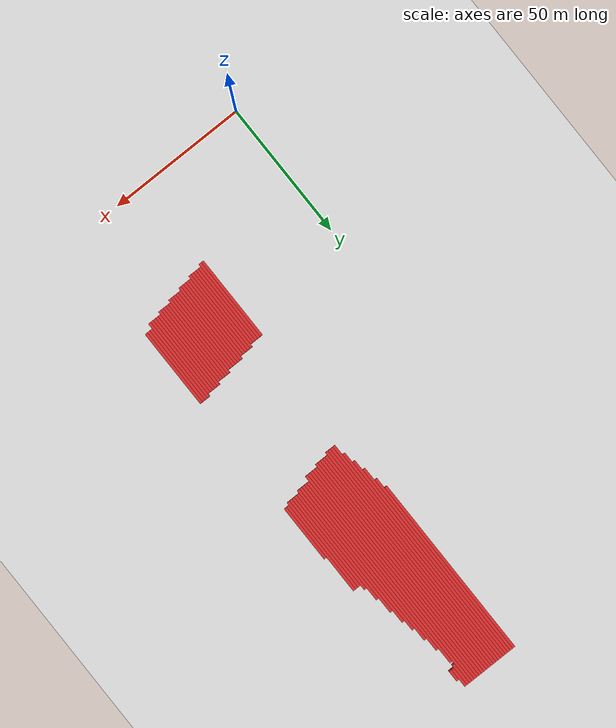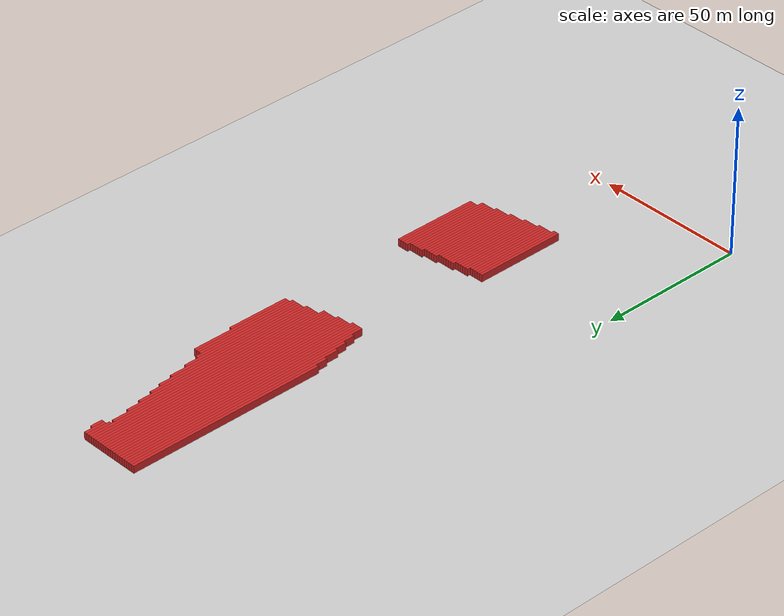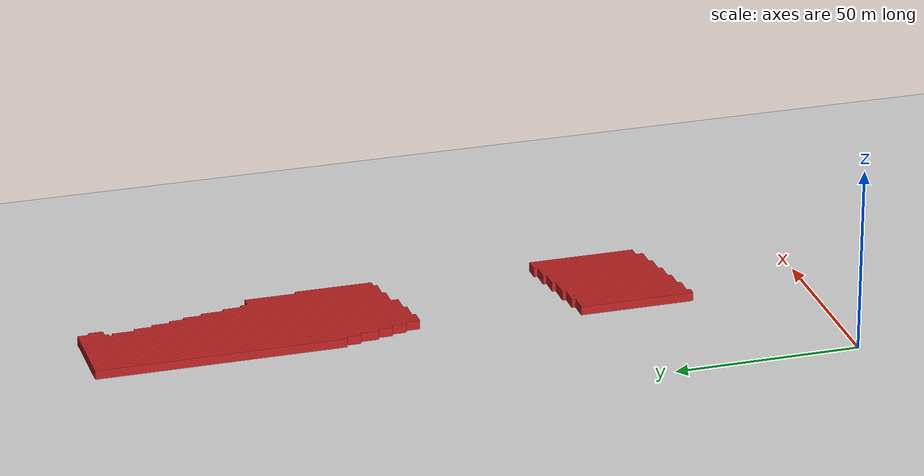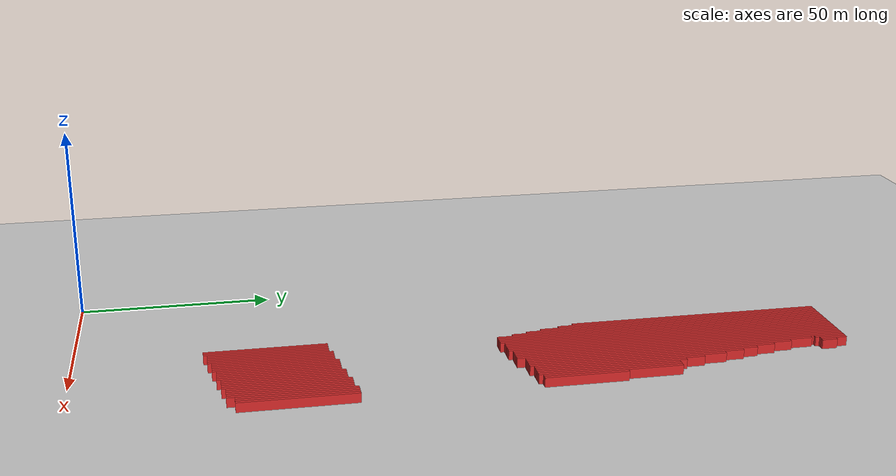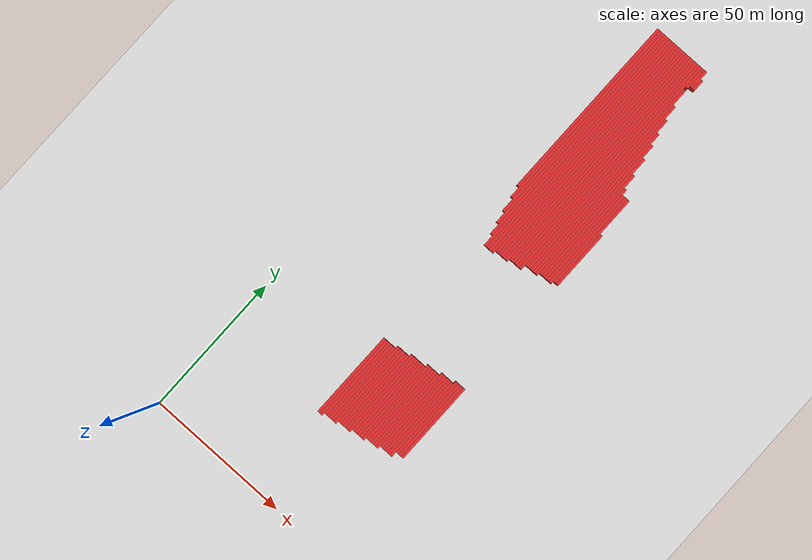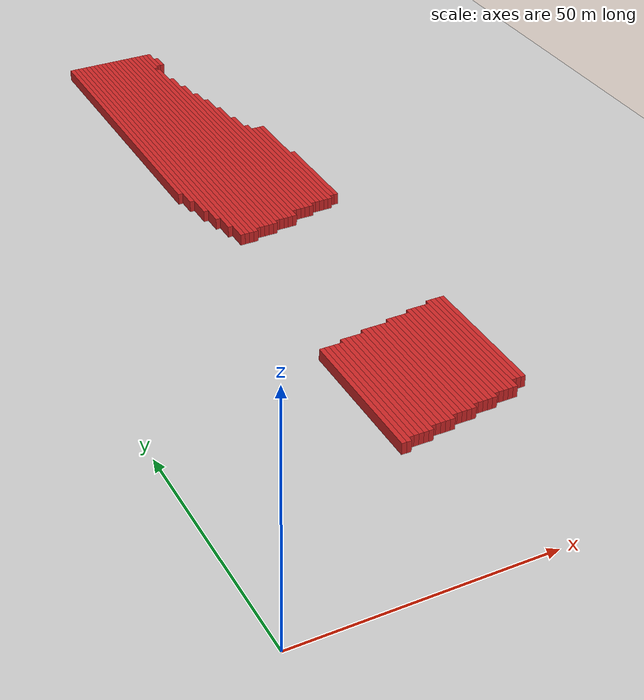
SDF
<sdf version="1.4">
 <world name="1_wall">
  <model name="ground_plane">
   <static>1</static>
   <link name="link">
    <collision name="collision">
     <geometry><plane><normal>0 0 1</normal><size>1000 1000</size></plane></geometry>
     <surface><friction><ode><mu>100</mu><mu2>50</mu2></ode></friction></surface>
    </collision>
    <visual name="visual">
     <cast_shadows>0</cast_shadows>
     <geometry><plane><normal>0 0 1</normal><size>10000 10000</size></plane></geometry>
     <material>
      <script><uri>file://media/materials/scripts/gazebo.material</uri><name>Gazebo/Grey</name></script>
     </material>
    </visual>
    <velocity_decay><linear>0</linear><angular>0</angular></velocity_decay>
   </link>
  </model>
  <model name="Wall_64">
   <static>1</static>
   <link name="Wall_64">
    <collision name="Wall_Collision_64">
     <geometry><box><size>67.0 1.0 2.5</size></box></geometry>
     <pose>0 0 1.25 0 -0 0</pose>
    </collision>
    <visual name="Wall_Visual_64">
     <pose>0 0 1.25 0 -0 0</pose>
     <geometry><box><size>67.0 1.0 2.5</size></box></geometry>
     <material>
      <script><uri>file://media/materials/scripts/gazebo.material</uri><name>Gazebo/Red</name></script>
     </material>
    </visual>
    <velocity_decay><linear>0</linear><angular>0</angular></velocity_decay>
    <pose>38.5 160.5 0 0 0 1.5707963267948966</pose>
   </link>
  </model>
  <model name="Wall_65">
   <static>1</static>
   <link name="Wall_65">
    <collision name="Wall_Collision_65">
     <geometry><box><size>31.0 1.0 2.5</size></box></geometry>
     <pose>0 0 1.25 0 -0 0</pose>
    </collision>
    <visual name="Wall_Visual_65">
     <pose>0 0 1.25 0 -0 0</pose>
     <geometry><box><size>31.0 1.0 2.5</size></box></geometry>
     <material>
      <script><uri>file://media/materials/scripts/gazebo.material</uri><name>Gazebo/Red</name></script>
     </material>
    </visual>
    <velocity_decay><linear>0</linear><angular>0</angular></velocity_decay>
    <pose>39.5 47.5 0 0 0 1.5707963267948966</pose>
   </link>
  </model>
  <model name="Wall_66">
   <static>1</static>
   <link name="Wall_66">
    <collision name="Wall_Collision_66">
     <geometry><box><size>71.0 1.0 2.5</size></box></geometry>
     <pose>0 0 1.25 0 -0 0</pose>
    </collision>
    <visual name="Wall_Visual_66">
     <pose>0 0 1.25 0 -0 0</pose>
     <geometry><box><size>71.0 1.0 2.5</size></box></geometry>
     <material>
      <script><uri>file://media/materials/scripts/gazebo.material</uri><name>Gazebo/Red</name></script>
     </material>
    </visual>
    <velocity_decay><linear>0</linear><angular>0</angular></velocity_decay>
    <pose>39.5 158.5 0 0 0 1.5707963267948966</pose>
   </link>
  </model>
  <model name="Wall_67">
   <static>1</static>
   <link name="Wall_67">
    <collision name="Wall_Collision_67">
     <geometry><box><size>31.0 1.0 2.5</size></box></geometry>
     <pose>0 0 1.25 0 -0 0</pose>
    </collision>
    <visual name="Wall_Visual_67">
     <pose>0 0 1.25 0 -0 0</pose>
     <geometry><box><size>31.0 1.0 2.5</size></box></geometry>
     <material>
      <script><uri>file://media/materials/scripts/gazebo.material</uri><name>Gazebo/Red</name></script>
     </material>
    </visual>
    <velocity_decay><linear>0</linear><angular>0</angular></velocity_decay>
    <pose>40.5 47.5 0 0 0 1.5707963267948966</pose>
   </link>
  </model>
  <model name="Wall_68">
   <static>1</static>
   <link name="Wall_68">
    <collision name="Wall_Collision_68">
     <geometry><box><size>76.0 1.0 2.5</size></box></geometry>
     <pose>0 0 1.25 0 -0 0</pose>
    </collision>
    <visual name="Wall_Visual_68">
     <pose>0 0 1.25 0 -0 0</pose>
     <geometry><box><size>76.0 1.0 2.5</size></box></geometry>
     <material>
      <script><uri>file://media/materials/scripts/gazebo.material</uri><name>Gazebo/Red</name></script>
     </material>
    </visual>
    <velocity_decay><linear>0</linear><angular>0</angular></velocity_decay>
    <pose>40.5 156.0 0 0 0 1.5707963267948966</pose>
   </link>
  </model>
  <model name="Wall_69">
   <static>1</static>
   <link name="Wall_69">
    <collision name="Wall_Collision_69">
     <geometry><box><size>30.0 1.0 2.5</size></box></geometry>
     <pose>0 0 1.25 0 -0 0</pose>
    </collision>
    <visual name="Wall_Visual_69">
     <pose>0 0 1.25 0 -0 0</pose>
     <geometry><box><size>30.0 1.0 2.5</size></box></geometry>
     <material>
      <script><uri>file://media/materials/scripts/gazebo.material</uri><name>Gazebo/Red</name></script>
     </material>
    </visual>
    <velocity_decay><linear>0</linear><angular>0</angular></velocity_decay>
    <pose>41.5 48.0 0 0 0 1.5707963267948966</pose>
   </link>
  </model>
  <model name="Wall_70">
   <static>1</static>
   <link name="Wall_70">
    <collision name="Wall_Collision_70">
     <geometry><box><size>80.0 1.0 2.5</size></box></geometry>
     <pose>0 0 1.25 0 -0 0</pose>
    </collision>
    <visual name="Wall_Visual_70">
     <pose>0 0 1.25 0 -0 0</pose>
     <geometry><box><size>80.0 1.0 2.5</size></box></geometry>
     <material>
      <script><uri>file://media/materials/scripts/gazebo.material</uri><name>Gazebo/Red</name></script>
     </material>
    </visual>
    <velocity_decay><linear>0</linear><angular>0</angular></velocity_decay>
    <pose>41.5 154.0 0 0 0 1.5707963267948966</pose>
   </link>
  </model>
  <model name="Wall_71">
   <static>1</static>
   <link name="Wall_71">
    <collision name="Wall_Collision_71">
     <geometry><box><size>30.0 1.0 2.5</size></box></geometry>
     <pose>0 0 1.25 0 -0 0</pose>
    </collision>
    <visual name="Wall_Visual_71">
     <pose>0 0 1.25 0 -0 0</pose>
     <geometry><box><size>30.0 1.0 2.5</size></box></geometry>
     <material>
      <script><uri>file://media/materials/scripts/gazebo.material</uri><name>Gazebo/Red</name></script>
     </material>
    </visual>
    <velocity_decay><linear>0</linear><angular>0</angular></velocity_decay>
    <pose>42.5 48.0 0 0 0 1.5707963267948966</pose>
   </link>
  </model>
  <model name="Wall_72">
   <static>1</static>
   <link name="Wall_72">
    <collision name="Wall_Collision_72">
     <geometry><box><size>84.0 1.0 2.5</size></box></geometry>
     <pose>0 0 1.25 0 -0 0</pose>
    </collision>
    <visual name="Wall_Visual_72">
     <pose>0 0 1.25 0 -0 0</pose>
     <geometry><box><size>84.0 1.0 2.5</size></box></geometry>
     <material>
      <script><uri>file://media/materials/scripts/gazebo.material</uri><name>Gazebo/Red</name></script>
     </material>
    </visual>
    <velocity_decay><linear>0</linear><angular>0</angular></velocity_decay>
    <pose>42.5 152.0 0 0 0 1.5707963267948966</pose>
   </link>
  </model>
  <model name="Wall_73">
   <static>1</static>
   <link name="Wall_73">
    <collision name="Wall_Collision_73">
     <geometry><box><size>30.0 1.0 2.5</size></box></geometry>
     <pose>0 0 1.25 0 -0 0</pose>
    </collision>
    <visual name="Wall_Visual_73">
     <pose>0 0 1.25 0 -0 0</pose>
     <geometry><box><size>30.0 1.0 2.5</size></box></geometry>
     <material>
      <script><uri>file://media/materials/scripts/gazebo.material</uri><name>Gazebo/Red</name></script>
     </material>
    </visual>
    <velocity_decay><linear>0</linear><angular>0</angular></velocity_decay>
    <pose>43.5 48.0 0 0 0 1.5707963267948966</pose>
   </link>
  </model>
  <model name="Wall_74">
   <static>1</static>
   <link name="Wall_74">
    <collision name="Wall_Collision_74">
     <geometry><box><size>88.0 1.0 2.5</size></box></geometry>
     <pose>0 0 1.25 0 -0 0</pose>
    </collision>
    <visual name="Wall_Visual_74">
     <pose>0 0 1.25 0 -0 0</pose>
     <geometry><box><size>88.0 1.0 2.5</size></box></geometry>
     <material>
      <script><uri>file://media/materials/scripts/gazebo.material</uri><name>Gazebo/Red</name></script>
     </material>
    </visual>
    <velocity_decay><linear>0</linear><angular>0</angular></velocity_decay>
    <pose>43.5 150.0 0 0 0 1.5707963267948966</pose>
   </link>
  </model>
  <model name="Wall_75">
   <static>1</static>
   <link name="Wall_75">
    <collision name="Wall_Collision_75">
     <geometry><box><size>31.0 1.0 2.5</size></box></geometry>
     <pose>0 0 1.25 0 -0 0</pose>
    </collision>
    <visual name="Wall_Visual_75">
     <pose>0 0 1.25 0 -0 0</pose>
     <geometry><box><size>31.0 1.0 2.5</size></box></geometry>
     <material>
      <script><uri>file://media/materials/scripts/gazebo.material</uri><name>Gazebo/Red</name></script>
     </material>
    </visual>
    <velocity_decay><linear>0</linear><angular>0</angular></velocity_decay>
    <pose>44.5 48.5 0 0 0 1.5707963267948966</pose>
   </link>
  </model>
  <model name="Wall_76">
   <static>1</static>
   <link name="Wall_76">
    <collision name="Wall_Collision_76">
     <geometry><box><size>88.0 1.0 2.5</size></box></geometry>
     <pose>0 0 1.25 0 -0 0</pose>
    </collision>
    <visual name="Wall_Visual_76">
     <pose>0 0 1.25 0 -0 0</pose>
     <geometry><box><size>88.0 1.0 2.5</size></box></geometry>
     <material>
      <script><uri>file://media/materials/scripts/gazebo.material</uri><name>Gazebo/Red</name></script>
     </material>
    </visual>
    <velocity_decay><linear>0</linear><angular>0</angular></velocity_decay>
    <pose>44.5 150.0 0 0 0 1.5707963267948966</pose>
   </link>
  </model>
  <model name="Wall_77">
   <static>1</static>
   <link name="Wall_77">
    <collision name="Wall_Collision_77">
     <geometry><box><size>31.0 1.0 2.5</size></box></geometry>
     <pose>0 0 1.25 0 -0 0</pose>
    </collision>
    <visual name="Wall_Visual_77">
     <pose>0 0 1.25 0 -0 0</pose>
     <geometry><box><size>31.0 1.0 2.5</size></box></geometry>
     <material>
      <script><uri>file://media/materials/scripts/gazebo.material</uri><name>Gazebo/Red</name></script>
     </material>
    </visual>
    <velocity_decay><linear>0</linear><angular>0</angular></velocity_decay>
    <pose>45.5 48.5 0 0 0 1.5707963267948966</pose>
   </link>
  </model>
  <model name="Wall_78">
   <static>1</static>
   <link name="Wall_78">
    <collision name="Wall_Collision_78">
     <geometry><box><size>88.0 1.0 2.5</size></box></geometry>
     <pose>0 0 1.25 0 -0 0</pose>
    </collision>
    <visual name="Wall_Visual_78">
     <pose>0 0 1.25 0 -0 0</pose>
     <geometry><box><size>88.0 1.0 2.5</size></box></geometry>
     <material>
      <script><uri>file://media/materials/scripts/gazebo.material</uri><name>Gazebo/Red</name></script>
     </material>
    </visual>
    <velocity_decay><linear>0</linear><angular>0</angular></velocity_decay>
    <pose>45.5 150.0 0 0 0 1.5707963267948966</pose>
   </link>
  </model>
  <model name="Wall_79">
   <static>1</static>
   <link name="Wall_79">
    <collision name="Wall_Collision_79">
     <geometry><box><size>30.0 1.0 2.5</size></box></geometry>
     <pose>0 0 1.25 0 -0 0</pose>
    </collision>
    <visual name="Wall_Visual_79">
     <pose>0 0 1.25 0 -0 0</pose>
     <geometry><box><size>30.0 1.0 2.5</size></box></geometry>
     <material>
      <script><uri>file://media/materials/scripts/gazebo.material</uri><name>Gazebo/Red</name></script>
     </material>
    </visual>
    <velocity_decay><linear>0</linear><angular>0</angular></velocity_decay>
    <pose>46.5 49.0 0 0 0 1.5707963267948966</pose>
   </link>
  </model>
  <model name="Wall_80">
   <static>1</static>
   <link name="Wall_80">
    <collision name="Wall_Collision_80">
     <geometry><box><size>88.0 1.0 2.5</size></box></geometry>
     <pose>0 0 1.25 0 -0 0</pose>
    </collision>
    <visual name="Wall_Visual_80">
     <pose>0 0 1.25 0 -0 0</pose>
     <geometry><box><size>88.0 1.0 2.5</size></box></geometry>
     <material>
      <script><uri>file://media/materials/scripts/gazebo.material</uri><name>Gazebo/Red</name></script>
     </material>
    </visual>
    <velocity_decay><linear>0</linear><angular>0</angular></velocity_decay>
    <pose>46.5 150.0 0 0 0 1.5707963267948966</pose>
   </link>
  </model>
  <model name="Wall_81">
   <static>1</static>
   <link name="Wall_81">
    <collision name="Wall_Collision_81">
     <geometry><box><size>30.0 1.0 2.5</size></box></geometry>
     <pose>0 0 1.25 0 -0 0</pose>
    </collision>
    <visual name="Wall_Visual_81">
     <pose>0 0 1.25 0 -0 0</pose>
     <geometry><box><size>30.0 1.0 2.5</size></box></geometry>
     <material>
      <script><uri>file://media/materials/scripts/gazebo.material</uri><name>Gazebo/Red</name></script>
     </material>
    </visual>
    <velocity_decay><linear>0</linear><angular>0</angular></velocity_decay>
    <pose>47.5 49.0 0 0 0 1.5707963267948966</pose>
   </link>
  </model>
  <model name="Wall_82">
   <static>1</static>
   <link name="Wall_82">
    <collision name="Wall_Collision_82">
     <geometry><box><size>87.0 1.0 2.5</size></box></geometry>
     <pose>0 0 1.25 0 -0 0</pose>
    </collision>
    <visual name="Wall_Visual_82">
     <pose>0 0 1.25 0 -0 0</pose>
     <geometry><box><size>87.0 1.0 2.5</size></box></geometry>
     <material>
      <script><uri>file://media/materials/scripts/gazebo.material</uri><name>Gazebo/Red</name></script>
     </material>
    </visual>
    <velocity_decay><linear>0</linear><angular>0</angular></velocity_decay>
    <pose>47.5 150.5 0 0 0 1.5707963267948966</pose>
   </link>
  </model>
  <model name="Wall_83">
   <static>1</static>
   <link name="Wall_83">
    <collision name="Wall_Collision_83">
     <geometry><box><size>30.0 1.0 2.5</size></box></geometry>
     <pose>0 0 1.25 0 -0 0</pose>
    </collision>
    <visual name="Wall_Visual_83">
     <pose>0 0 1.25 0 -0 0</pose>
     <geometry><box><size>30.0 1.0 2.5</size></box></geometry>
     <material>
      <script><uri>file://media/materials/scripts/gazebo.material</uri><name>Gazebo/Red</name></script>
     </material>
    </visual>
    <velocity_decay><linear>0</linear><angular>0</angular></velocity_decay>
    <pose>48.5 49.0 0 0 0 1.5707963267948966</pose>
   </link>
  </model>
  <model name="Wall_84">
   <static>1</static>
   <link name="Wall_84">
    <collision name="Wall_Collision_84">
     <geometry><box><size>87.0 1.0 2.5</size></box></geometry>
     <pose>0 0 1.25 0 -0 0</pose>
    </collision>
    <visual name="Wall_Visual_84">
     <pose>0 0 1.25 0 -0 0</pose>
     <geometry><box><size>87.0 1.0 2.5</size></box></geometry>
     <material>
      <script><uri>file://media/materials/scripts/gazebo.material</uri><name>Gazebo/Red</name></script>
     </material>
    </visual>
    <velocity_decay><linear>0</linear><angular>0</angular></velocity_decay>
    <pose>48.5 150.5 0 0 0 1.5707963267948966</pose>
   </link>
  </model>
  <model name="Wall_85">
   <static>1</static>
   <link name="Wall_85">
    <collision name="Wall_Collision_85">
     <geometry><box><size>31.0 1.0 2.5</size></box></geometry>
     <pose>0 0 1.25 0 -0 0</pose>
    </collision>
    <visual name="Wall_Visual_85">
     <pose>0 0 1.25 0 -0 0</pose>
     <geometry><box><size>31.0 1.0 2.5</size></box></geometry>
     <material>
      <script><uri>file://media/materials/scripts/gazebo.material</uri><name>Gazebo/Red</name></script>
     </material>
    </visual>
    <velocity_decay><linear>0</linear><angular>0</angular></velocity_decay>
    <pose>49.5 49.5 0 0 0 1.5707963267948966</pose>
   </link>
  </model>
  <model name="Wall_86">
   <static>1</static>
   <link name="Wall_86">
    <collision name="Wall_Collision_86">
     <geometry><box><size>87.0 1.0 2.5</size></box></geometry>
     <pose>0 0 1.25 0 -0 0</pose>
    </collision>
    <visual name="Wall_Visual_86">
     <pose>0 0 1.25 0 -0 0</pose>
     <geometry><box><size>87.0 1.0 2.5</size></box></geometry>
     <material>
      <script><uri>file://media/materials/scripts/gazebo.material</uri><name>Gazebo/Red</name></script>
     </material>
    </visual>
    <velocity_decay><linear>0</linear><angular>0</angular></velocity_decay>
    <pose>49.5 150.5 0 0 0 1.5707963267948966</pose>
   </link>
  </model>
  <model name="Wall_87">
   <static>1</static>
   <link name="Wall_87">
    <collision name="Wall_Collision_87">
     <geometry><box><size>31.0 1.0 2.5</size></box></geometry>
     <pose>0 0 1.25 0 -0 0</pose>
    </collision>
    <visual name="Wall_Visual_87">
     <pose>0 0 1.25 0 -0 0</pose>
     <geometry><box><size>31.0 1.0 2.5</size></box></geometry>
     <material>
      <script><uri>file://media/materials/scripts/gazebo.material</uri><name>Gazebo/Red</name></script>
     </material>
    </visual>
    <velocity_decay><linear>0</linear><angular>0</angular></velocity_decay>
    <pose>50.5 49.5 0 0 0 1.5707963267948966</pose>
   </link>
  </model>
  <model name="Wall_88">
   <static>1</static>
   <link name="Wall_88">
    <collision name="Wall_Collision_88">
     <geometry><box><size>87.0 1.0 2.5</size></box></geometry>
     <pose>0 0 1.25 0 -0 0</pose>
    </collision>
    <visual name="Wall_Visual_88">
     <pose>0 0 1.25 0 -0 0</pose>
     <geometry><box><size>87.0 1.0 2.5</size></box></geometry>
     <material>
      <script><uri>file://media/materials/scripts/gazebo.material</uri><name>Gazebo/Red</name></script>
     </material>
    </visual>
    <velocity_decay><linear>0</linear><angular>0</angular></velocity_decay>
    <pose>50.5 150.5 0 0 0 1.5707963267948966</pose>
   </link>
  </model>
  <model name="Wall_89">
   <static>1</static>
   <link name="Wall_89">
    <collision name="Wall_Collision_89">
     <geometry><box><size>30.0 1.0 2.5</size></box></geometry>
     <pose>0 0 1.25 0 -0 0</pose>
    </collision>
    <visual name="Wall_Visual_89">
     <pose>0 0 1.25 0 -0 0</pose>
     <geometry><box><size>30.0 1.0 2.5</size></box></geometry>
     <material>
      <script><uri>file://media/materials/scripts/gazebo.material</uri><name>Gazebo/Red</name></script>
     </material>
    </visual>
    <velocity_decay><linear>0</linear><angular>0</angular></velocity_decay>
    <pose>51.5 50.0 0 0 0 1.5707963267948966</pose>
   </link>
  </model>
  <model name="Wall_90">
   <static>1</static>
   <link name="Wall_90">
    <collision name="Wall_Collision_90">
     <geometry><box><size>87.0 1.0 2.5</size></box></geometry>
     <pose>0 0 1.25 0 -0 0</pose>
    </collision>
    <visual name="Wall_Visual_90">
     <pose>0 0 1.25 0 -0 0</pose>
     <geometry><box><size>87.0 1.0 2.5</size></box></geometry>
     <material>
      <script><uri>file://media/materials/scripts/gazebo.material</uri><name>Gazebo/Red</name></script>
     </material>
    </visual>
    <velocity_decay><linear>0</linear><angular>0</angular></velocity_decay>
    <pose>51.5 150.5 0 0 0 1.5707963267948966</pose>
   </link>
  </model>
  <model name="Wall_91">
   <static>1</static>
   <link name="Wall_91">
    <collision name="Wall_Collision_91">
     <geometry><box><size>30.0 1.0 2.5</size></box></geometry>
     <pose>0 0 1.25 0 -0 0</pose>
    </collision>
    <visual name="Wall_Visual_91">
     <pose>0 0 1.25 0 -0 0</pose>
     <geometry><box><size>30.0 1.0 2.5</size></box></geometry>
     <material>
      <script><uri>file://media/materials/scripts/gazebo.material</uri><name>Gazebo/Red</name></script>
     </material>
    </visual>
    <velocity_decay><linear>0</linear><angular>0</angular></velocity_decay>
    <pose>52.5 50.0 0 0 0 1.5707963267948966</pose>
   </link>
  </model>
  <model name="Wall_92">
   <static>1</static>
   <link name="Wall_92">
    <collision name="Wall_Collision_92">
     <geometry><box><size>86.0 1.0 2.5</size></box></geometry>
     <pose>0 0 1.25 0 -0 0</pose>
    </collision>
    <visual name="Wall_Visual_92">
     <pose>0 0 1.25 0 -0 0</pose>
     <geometry><box><size>86.0 1.0 2.5</size></box></geometry>
     <material>
      <script><uri>file://media/materials/scripts/gazebo.material</uri><name>Gazebo/Red</name></script>
     </material>
    </visual>
    <velocity_decay><linear>0</linear><angular>0</angular></velocity_decay>
    <pose>52.5 151.0 0 0 0 1.5707963267948966</pose>
   </link>
  </model>
  <model name="Wall_93">
   <static>1</static>
   <link name="Wall_93">
    <collision name="Wall_Collision_93">
     <geometry><box><size>30.0 1.0 2.5</size></box></geometry>
     <pose>0 0 1.25 0 -0 0</pose>
    </collision>
    <visual name="Wall_Visual_93">
     <pose>0 0 1.25 0 -0 0</pose>
     <geometry><box><size>30.0 1.0 2.5</size></box></geometry>
     <material>
      <script><uri>file://media/materials/scripts/gazebo.material</uri><name>Gazebo/Red</name></script>
     </material>
    </visual>
    <velocity_decay><linear>0</linear><angular>0</angular></velocity_decay>
    <pose>53.5 50.0 0 0 0 1.5707963267948966</pose>
   </link>
  </model>
  <model name="Wall_94">
   <static>1</static>
   <link name="Wall_94">
    <collision name="Wall_Collision_94">
     <geometry><box><size>86.0 1.0 2.5</size></box></geometry>
     <pose>0 0 1.25 0 -0 0</pose>
    </collision>
    <visual name="Wall_Visual_94">
     <pose>0 0 1.25 0 -0 0</pose>
     <geometry><box><size>86.0 1.0 2.5</size></box></geometry>
     <material>
      <script><uri>file://media/materials/scripts/gazebo.material</uri><name>Gazebo/Red</name></script>
     </material>
    </visual>
    <velocity_decay><linear>0</linear><angular>0</angular></velocity_decay>
    <pose>53.5 151.0 0 0 0 1.5707963267948966</pose>
   </link>
  </model>
  <model name="Wall_95">
   <static>1</static>
   <link name="Wall_95">
    <collision name="Wall_Collision_95">
     <geometry><box><size>30.0 1.0 2.5</size></box></geometry>
     <pose>0 0 1.25 0 -0 0</pose>
    </collision>
    <visual name="Wall_Visual_95">
     <pose>0 0 1.25 0 -0 0</pose>
     <geometry><box><size>30.0 1.0 2.5</size></box></geometry>
     <material>
      <script><uri>file://media/materials/scripts/gazebo.material</uri><name>Gazebo/Red</name></script>
     </material>
    </visual>
    <velocity_decay><linear>0</linear><angular>0</angular></velocity_decay>
    <pose>54.5 50.0 0 0 0 1.5707963267948966</pose>
   </link>
  </model>
  <model name="Wall_96">
   <static>1</static>
   <link name="Wall_96">
    <collision name="Wall_Collision_96">
     <geometry><box><size>86.0 1.0 2.5</size></box></geometry>
     <pose>0 0 1.25 0 -0 0</pose>
    </collision>
    <visual name="Wall_Visual_96">
     <pose>0 0 1.25 0 -0 0</pose>
     <geometry><box><size>86.0 1.0 2.5</size></box></geometry>
     <material>
      <script><uri>file://media/materials/scripts/gazebo.material</uri><name>Gazebo/Red</name></script>
     </material>
    </visual>
    <velocity_decay><linear>0</linear><angular>0</angular></velocity_decay>
    <pose>54.5 151.0 0 0 0 1.5707963267948966</pose>
   </link>
  </model>
  <model name="Wall_97">
   <static>1</static>
   <link name="Wall_97">
    <collision name="Wall_Collision_97">
     <geometry><box><size>31.0 1.0 2.5</size></box></geometry>
     <pose>0 0 1.25 0 -0 0</pose>
    </collision>
    <visual name="Wall_Visual_97">
     <pose>0 0 1.25 0 -0 0</pose>
     <geometry><box><size>31.0 1.0 2.5</size></box></geometry>
     <material>
      <script><uri>file://media/materials/scripts/gazebo.material</uri><name>Gazebo/Red</name></script>
     </material>
    </visual>
    <velocity_decay><linear>0</linear><angular>0</angular></velocity_decay>
    <pose>55.5 50.5 0 0 0 1.5707963267948966</pose>
   </link>
  </model>
  <model name="Wall_98">
   <static>1</static>
   <link name="Wall_98">
    <collision name="Wall_Collision_98">
     <geometry><box><size>86.0 1.0 2.5</size></box></geometry>
     <pose>0 0 1.25 0 -0 0</pose>
    </collision>
    <visual name="Wall_Visual_98">
     <pose>0 0 1.25 0 -0 0</pose>
     <geometry><box><size>86.0 1.0 2.5</size></box></geometry>
     <material>
      <script><uri>file://media/materials/scripts/gazebo.material</uri><name>Gazebo/Red</name></script>
     </material>
    </visual>
    <velocity_decay><linear>0</linear><angular>0</angular></velocity_decay>
    <pose>55.5 151.0 0 0 0 1.5707963267948966</pose>
   </link>
  </model>
  <model name="Wall_99">
   <static>1</static>
   <link name="Wall_99">
    <collision name="Wall_Collision_99">
     <geometry><box><size>30.0 1.0 2.5</size></box></geometry>
     <pose>0 0 1.25 0 -0 0</pose>
    </collision>
    <visual name="Wall_Visual_99">
     <pose>0 0 1.25 0 -0 0</pose>
     <geometry><box><size>30.0 1.0 2.5</size></box></geometry>
     <material>
      <script><uri>file://media/materials/scripts/gazebo.material</uri><name>Gazebo/Red</name></script>
     </material>
    </visual>
    <velocity_decay><linear>0</linear><angular>0</angular></velocity_decay>
    <pose>56.5 51.0 0 0 0 1.5707963267948966</pose>
   </link>
  </model>
  <model name="Wall_100">
   <static>1</static>
   <link name="Wall_100">
    <collision name="Wall_Collision_100">
     <geometry><box><size>86.0 1.0 2.5</size></box></geometry>
     <pose>0 0 1.25 0 -0 0</pose>
    </collision>
    <visual name="Wall_Visual_100">
     <pose>0 0 1.25 0 -0 0</pose>
     <geometry><box><size>86.0 1.0 2.5</size></box></geometry>
     <material>
      <script><uri>file://media/materials/scripts/gazebo.material</uri><name>Gazebo/Red</name></script>
     </material>
    </visual>
    <velocity_decay><linear>0</linear><angular>0</angular></velocity_decay>
    <pose>56.5 151.0 0 0 0 1.5707963267948966</pose>
   </link>
  </model>
  <model name="Wall_101">
   <static>1</static>
   <link name="Wall_101">
    <collision name="Wall_Collision_101">
     <geometry><box><size>30.0 1.0 2.5</size></box></geometry>
     <pose>0 0 1.25 0 -0 0</pose>
    </collision>
    <visual name="Wall_Visual_101">
     <pose>0 0 1.25 0 -0 0</pose>
     <geometry><box><size>30.0 1.0 2.5</size></box></geometry>
     <material>
      <script><uri>file://media/materials/scripts/gazebo.material</uri><name>Gazebo/Red</name></script>
     </material>
    </visual>
    <velocity_decay><linear>0</linear><angular>0</angular></velocity_decay>
    <pose>57.5 51.0 0 0 0 1.5707963267948966</pose>
   </link>
  </model>
  <model name="Wall_102">
   <static>1</static>
   <link name="Wall_102">
    <collision name="Wall_Collision_102">
     <geometry><box><size>75.0 1.0 2.5</size></box></geometry>
     <pose>0 0 1.25 0 -0 0</pose>
    </collision>
    <visual name="Wall_Visual_102">
     <pose>0 0 1.25 0 -0 0</pose>
     <geometry><box><size>75.0 1.0 2.5</size></box></geometry>
     <material>
      <script><uri>file://media/materials/scripts/gazebo.material</uri><name>Gazebo/Red</name></script>
     </material>
    </visual>
    <velocity_decay><linear>0</linear><angular>0</angular></velocity_decay>
    <pose>57.5 147.5 0 0 0 1.5707963267948966</pose>
   </link>
  </model>
  <model name="Wall_103">
   <static>1</static>
   <link name="Wall_103">
    <collision name="Wall_Collision_103">
     <geometry><box><size>8.0 1.0 2.5</size></box></geometry>
     <pose>0 0 1.25 0 -0 0</pose>
    </collision>
    <visual name="Wall_Visual_103">
     <pose>0 0 1.25 0 -0 0</pose>
     <geometry><box><size>8.0 1.0 2.5</size></box></geometry>
     <material>
      <script><uri>file://media/materials/scripts/gazebo.material</uri><name>Gazebo/Red</name></script>
     </material>
    </visual>
    <velocity_decay><linear>0</linear><angular>0</angular></velocity_decay>
    <pose>57.5 190.0 0 0 0 1.5707963267948966</pose>
   </link>
  </model>
  <model name="Wall_104">
   <static>1</static>
   <link name="Wall_104">
    <collision name="Wall_Collision_104">
     <geometry><box><size>30.0 1.0 2.5</size></box></geometry>
     <pose>0 0 1.25 0 -0 0</pose>
    </collision>
    <visual name="Wall_Visual_104">
     <pose>0 0 1.25 0 -0 0</pose>
     <geometry><box><size>30.0 1.0 2.5</size></box></geometry>
     <material>
      <script><uri>file://media/materials/scripts/gazebo.material</uri><name>Gazebo/Red</name></script>
     </material>
    </visual>
    <velocity_decay><linear>0</linear><angular>0</angular></velocity_decay>
    <pose>58.5 51.0 0 0 0 1.5707963267948966</pose>
   </link>
  </model>
  <model name="Wall_105">
   <static>1</static>
   <link name="Wall_105">
    <collision name="Wall_Collision_105">
     <geometry><box><size>69.0 1.0 2.5</size></box></geometry>
     <pose>0 0 1.25 0 -0 0</pose>
    </collision>
    <visual name="Wall_Visual_105">
     <pose>0 0 1.25 0 -0 0</pose>
     <geometry><box><size>69.0 1.0 2.5</size></box></geometry>
     <material>
      <script><uri>file://media/materials/scripts/gazebo.material</uri><name>Gazebo/Red</name></script>
     </material>
    </visual>
    <velocity_decay><linear>0</linear><angular>0</angular></velocity_decay>
    <pose>58.5 144.5 0 0 0 1.5707963267948966</pose>
   </link>
  </model>
  <model name="Wall_106">
   <static>1</static>
   <link name="Wall_106">
    <collision name="Wall_Collision_106">
     <geometry><box><size>7.0 1.0 2.5</size></box></geometry>
     <pose>0 0 1.25 0 -0 0</pose>
    </collision>
    <visual name="Wall_Visual_106">
     <pose>0 0 1.25 0 -0 0</pose>
     <geometry><box><size>7.0 1.0 2.5</size></box></geometry>
     <material>
      <script><uri>file://media/materials/scripts/gazebo.material</uri><name>Gazebo/Red</name></script>
     </material>
    </visual>
    <velocity_decay><linear>0</linear><angular>0</angular></velocity_decay>
    <pose>58.5 190.5 0 0 0 1.5707963267948966</pose>
   </link>
  </model>
  <model name="Wall_107">
   <static>1</static>
   <link name="Wall_107">
    <collision name="Wall_Collision_107">
     <geometry><box><size>30.0 1.0 2.5</size></box></geometry>
     <pose>0 0 1.25 0 -0 0</pose>
    </collision>
    <visual name="Wall_Visual_107">
     <pose>0 0 1.25 0 -0 0</pose>
     <geometry><box><size>30.0 1.0 2.5</size></box></geometry>
     <material>
      <script><uri>file://media/materials/scripts/gazebo.material</uri><name>Gazebo/Red</name></script>
     </material>
    </visual>
    <velocity_decay><linear>0</linear><angular>0</angular></velocity_decay>
    <pose>59.5 51.0 0 0 0 1.5707963267948966</pose>
   </link>
  </model>
  <model name="Wall_108">
   <static>1</static>
   <link name="Wall_108">
    <collision name="Wall_Collision_108">
     <geometry><box><size>64.0 1.0 2.5</size></box></geometry>
     <pose>0 0 1.25 0 -0 0</pose>
    </collision>
    <visual name="Wall_Visual_108">
     <pose>0 0 1.25 0 -0 0</pose>
     <geometry><box><size>64.0 1.0 2.5</size></box></geometry>
     <material>
      <script><uri>file://media/materials/scripts/gazebo.material</uri><name>Gazebo/Red</name></script>
     </material>
    </visual>
    <velocity_decay><linear>0</linear><angular>0</angular></velocity_decay>
    <pose>59.5 142.0 0 0 0 1.5707963267948966</pose>
   </link>
  </model>
  <model name="Wall_109">
   <static>1</static>
   <link name="Wall_109">
    <collision name="Wall_Collision_109">
     <geometry><box><size>4.0 1.0 2.5</size></box></geometry>
     <pose>0 0 1.25 0 -0 0</pose>
    </collision>
    <visual name="Wall_Visual_109">
     <pose>0 0 1.25 0 -0 0</pose>
     <geometry><box><size>4.0 1.0 2.5</size></box></geometry>
     <material>
      <script><uri>file://media/materials/scripts/gazebo.material</uri><name>Gazebo/Red</name></script>
     </material>
    </visual>
    <velocity_decay><linear>0</linear><angular>0</angular></velocity_decay>
    <pose>59.5 189.0 0 0 0 1.5707963267948966</pose>
   </link>
  </model>
  <model name="Wall_110">
   <static>1</static>
   <link name="Wall_110">
    <collision name="Wall_Collision_110">
     <geometry><box><size>31.0 1.0 2.5</size></box></geometry>
     <pose>0 0 1.25 0 -0 0</pose>
    </collision>
    <visual name="Wall_Visual_110">
     <pose>0 0 1.25 0 -0 0</pose>
     <geometry><box><size>31.0 1.0 2.5</size></box></geometry>
     <material>
      <script><uri>file://media/materials/scripts/gazebo.material</uri><name>Gazebo/Red</name></script>
     </material>
    </visual>
    <velocity_decay><linear>0</linear><angular>0</angular></velocity_decay>
    <pose>60.5 51.5 0 0 0 1.5707963267948966</pose>
   </link>
  </model>
  <model name="Wall_111">
   <static>1</static>
   <link name="Wall_111">
    <collision name="Wall_Collision_111">
     <geometry><box><size>59.0 1.0 2.5</size></box></geometry>
     <pose>0 0 1.25 0 -0 0</pose>
    </collision>
    <visual name="Wall_Visual_111">
     <pose>0 0 1.25 0 -0 0</pose>
     <geometry><box><size>59.0 1.0 2.5</size></box></geometry>
     <material>
      <script><uri>file://media/materials/scripts/gazebo.material</uri><name>Gazebo/Red</name></script>
     </material>
    </visual>
    <velocity_decay><linear>0</linear><angular>0</angular></velocity_decay>
    <pose>60.5 139.5 0 0 0 1.5707963267948966</pose>
   </link>
  </model>
  <model name="Wall_112">
   <static>1</static>
   <link name="Wall_112">
    <collision name="Wall_Collision_112">
     <geometry><box><size>30.0 1.0 2.5</size></box></geometry>
     <pose>0 0 1.25 0 -0 0</pose>
    </collision>
    <visual name="Wall_Visual_112">
     <pose>0 0 1.25 0 -0 0</pose>
     <geometry><box><size>30.0 1.0 2.5</size></box></geometry>
     <material>
      <script><uri>file://media/materials/scripts/gazebo.material</uri><name>Gazebo/Red</name></script>
     </material>
    </visual>
    <velocity_decay><linear>0</linear><angular>0</angular></velocity_decay>
    <pose>61.5 52.0 0 0 0 1.5707963267948966</pose>
   </link>
  </model>
  <model name="Wall_113">
   <static>1</static>
   <link name="Wall_113">
    <collision name="Wall_Collision_113">
     <geometry><box><size>55.0 1.0 2.5</size></box></geometry>
     <pose>0 0 1.25 0 -0 0</pose>
    </collision>
    <visual name="Wall_Visual_113">
     <pose>0 0 1.25 0 -0 0</pose>
     <geometry><box><size>55.0 1.0 2.5</size></box></geometry>
     <material>
      <script><uri>file://media/materials/scripts/gazebo.material</uri><name>Gazebo/Red</name></script>
     </material>
    </visual>
    <velocity_decay><linear>0</linear><angular>0</angular></velocity_decay>
    <pose>61.5 137.5 0 0 0 1.5707963267948966</pose>
   </link>
  </model>
  <model name="Wall_114">
   <static>1</static>
   <link name="Wall_114">
    <collision name="Wall_Collision_114">
     <geometry><box><size>30.0 1.0 2.5</size></box></geometry>
     <pose>0 0 1.25 0 -0 0</pose>
    </collision>
    <visual name="Wall_Visual_114">
     <pose>0 0 1.25 0 -0 0</pose>
     <geometry><box><size>30.0 1.0 2.5</size></box></geometry>
     <material>
      <script><uri>file://media/materials/scripts/gazebo.material</uri><name>Gazebo/Red</name></script>
     </material>
    </visual>
    <velocity_decay><linear>0</linear><angular>0</angular></velocity_decay>
    <pose>62.5 52.0 0 0 0 1.5707963267948966</pose>
   </link>
  </model>
  <model name="Wall_115">
   <static>1</static>
   <link name="Wall_115">
    <collision name="Wall_Collision_115">
     <geometry><box><size>49.0 1.0 2.5</size></box></geometry>
     <pose>0 0 1.25 0 -0 0</pose>
    </collision>
    <visual name="Wall_Visual_115">
     <pose>0 0 1.25 0 -0 0</pose>
     <geometry><box><size>49.0 1.0 2.5</size></box></geometry>
     <material>
      <script><uri>file://media/materials/scripts/gazebo.material</uri><name>Gazebo/Red</name></script>
     </material>
    </visual>
    <velocity_decay><linear>0</linear><angular>0</angular></velocity_decay>
    <pose>62.5 135.5 0 0 0 1.5707963267948966</pose>
   </link>
  </model>
  <model name="Wall_116">
   <static>1</static>
   <link name="Wall_116">
    <collision name="Wall_Collision_116">
     <geometry><box><size>30.0 1.0 2.5</size></box></geometry>
     <pose>0 0 1.25 0 -0 0</pose>
    </collision>
    <visual name="Wall_Visual_116">
     <pose>0 0 1.25 0 -0 0</pose>
     <geometry><box><size>30.0 1.0 2.5</size></box></geometry>
     <material>
      <script><uri>file://media/materials/scripts/gazebo.material</uri><name>Gazebo/Red</name></script>
     </material>
    </visual>
    <velocity_decay><linear>0</linear><angular>0</angular></velocity_decay>
    <pose>63.5 52.0 0 0 0 1.5707963267948966</pose>
   </link>
  </model>
  <model name="Wall_117">
   <static>1</static>
   <link name="Wall_117">
    <collision name="Wall_Collision_117">
     <geometry><box><size>43.0 1.0 2.5</size></box></geometry>
     <pose>0 0 1.25 0 -0 0</pose>
    </collision>
    <visual name="Wall_Visual_117">
     <pose>0 0 1.25 0 -0 0</pose>
     <geometry><box><size>43.0 1.0 2.5</size></box></geometry>
     <material>
      <script><uri>file://media/materials/scripts/gazebo.material</uri><name>Gazebo/Red</name></script>
     </material>
    </visual>
    <velocity_decay><linear>0</linear><angular>0</angular></velocity_decay>
    <pose>63.5 132.5 0 0 0 1.5707963267948966</pose>
   </link>
  </model>
  <model name="Wall_118">
   <static>1</static>
   <link name="Wall_118">
    <collision name="Wall_Collision_118">
     <geometry><box><size>30.0 1.0 2.5</size></box></geometry>
     <pose>0 0 1.25 0 -0 0</pose>
    </collision>
    <visual name="Wall_Visual_118">
     <pose>0 0 1.25 0 -0 0</pose>
     <geometry><box><size>30.0 1.0 2.5</size></box></geometry>
     <material>
      <script><uri>file://media/materials/scripts/gazebo.material</uri><name>Gazebo/Red</name></script>
     </material>
    </visual>
    <velocity_decay><linear>0</linear><angular>0</angular></velocity_decay>
    <pose>64.5 52.0 0 0 0 1.5707963267948966</pose>
   </link>
  </model>
  <model name="Wall_119">
   <static>1</static>
   <link name="Wall_119">
    <collision name="Wall_Collision_119">
     <geometry><box><size>38.0 1.0 2.5</size></box></geometry>
     <pose>0 0 1.25 0 -0 0</pose>
    </collision>
    <visual name="Wall_Visual_119">
     <pose>0 0 1.25 0 -0 0</pose>
     <geometry><box><size>38.0 1.0 2.5</size></box></geometry>
     <material>
      <script><uri>file://media/materials/scripts/gazebo.material</uri><name>Gazebo/Red</name></script>
     </material>
    </visual>
    <velocity_decay><linear>0</linear><angular>0</angular></velocity_decay>
    <pose>64.5 130.0 0 0 0 1.5707963267948966</pose>
   </link>
  </model>
  <model name="Wall_120">
   <static>1</static>
   <link name="Wall_120">
    <collision name="Wall_Collision_120">
     <geometry><box><size>31.0 1.0 2.5</size></box></geometry>
     <pose>0 0 1.25 0 -0 0</pose>
    </collision>
    <visual name="Wall_Visual_120">
     <pose>0 0 1.25 0 -0 0</pose>
     <geometry><box><size>31.0 1.0 2.5</size></box></geometry>
     <material>
      <script><uri>file://media/materials/scripts/gazebo.material</uri><name>Gazebo/Red</name></script>
     </material>
    </visual>
    <velocity_decay><linear>0</linear><angular>0</angular></velocity_decay>
    <pose>65.5 52.5 0 0 0 1.5707963267948966</pose>
   </link>
  </model>
  <model name="Wall_121">
   <static>1</static>
   <link name="Wall_121">
    <collision name="Wall_Collision_121">
     <geometry><box><size>36.0 1.0 2.5</size></box></geometry>
     <pose>0 0 1.25 0 -0 0</pose>
    </collision>
    <visual name="Wall_Visual_121">
     <pose>0 0 1.25 0 -0 0</pose>
     <geometry><box><size>36.0 1.0 2.5</size></box></geometry>
     <material>
      <script><uri>file://media/materials/scripts/gazebo.material</uri><name>Gazebo/Red</name></script>
     </material>
    </visual>
    <velocity_decay><linear>0</linear><angular>0</angular></velocity_decay>
    <pose>65.5 129.0 0 0 0 1.5707963267948966</pose>
   </link>
  </model>
  <model name="Wall_122">
   <static>1</static>
   <link name="Wall_122">
    <collision name="Wall_Collision_122">
     <geometry><box><size>29.0 1.0 2.5</size></box></geometry>
     <pose>0 0 1.25 0 -0 0</pose>
    </collision>
    <visual name="Wall_Visual_122">
     <pose>0 0 1.25 0 -0 0</pose>
     <geometry><box><size>29.0 1.0 2.5</size></box></geometry>
     <material>
      <script><uri>file://media/materials/scripts/gazebo.material</uri><name>Gazebo/Red</name></script>
     </material>
    </visual>
    <velocity_decay><linear>0</linear><angular>0</angular></velocity_decay>
    <pose>66.5 53.5 0 0 0 1.5707963267948966</pose>
   </link>
  </model>
  <model name="Wall_123">
   <static>1</static>
   <link name="Wall_123">
    <collision name="Wall_Collision_123">
     <geometry><box><size>36.0 1.0 2.5</size></box></geometry>
     <pose>0 0 1.25 0 -0 0</pose>
    </collision>
    <visual name="Wall_Visual_123">
     <pose>0 0 1.25 0 -0 0</pose>
     <geometry><box><size>36.0 1.0 2.5</size></box></geometry>
     <material>
      <script><uri>file://media/materials/scripts/gazebo.material</uri><name>Gazebo/Red</name></script>
     </material>
    </visual>
    <velocity_decay><linear>0</linear><angular>0</angular></velocity_decay>
    <pose>66.5 129.0 0 0 0 1.5707963267948966</pose>
   </link>
  </model>
  <model name="Wall_124">
   <static>1</static>
   <link name="Wall_124">
    <collision name="Wall_Collision_124">
     <geometry><box><size>29.0 1.0 2.5</size></box></geometry>
     <pose>0 0 1.25 0 -0 0</pose>
    </collision>
    <visual name="Wall_Visual_124">
     <pose>0 0 1.25 0 -0 0</pose>
     <geometry><box><size>29.0 1.0 2.5</size></box></geometry>
     <material>
      <script><uri>file://media/materials/scripts/gazebo.material</uri><name>Gazebo/Red</name></script>
     </material>
    </visual>
    <velocity_decay><linear>0</linear><angular>0</angular></velocity_decay>
    <pose>67.5 53.5 0 0 0 1.5707963267948966</pose>
   </link>
  </model>
  <model name="Wall_125">
   <static>1</static>
   <link name="Wall_125">
    <collision name="Wall_Collision_125">
     <geometry><box><size>35.0 1.0 2.5</size></box></geometry>
     <pose>0 0 1.25 0 -0 0</pose>
    </collision>
    <visual name="Wall_Visual_125">
     <pose>0 0 1.25 0 -0 0</pose>
     <geometry><box><size>35.0 1.0 2.5</size></box></geometry>
     <material>
      <script><uri>file://media/materials/scripts/gazebo.material</uri><name>Gazebo/Red</name></script>
     </material>
    </visual>
    <velocity_decay><linear>0</linear><angular>0</angular></velocity_decay>
    <pose>67.5 129.5 0 0 0 1.5707963267948966</pose>
   </link>
  </model>
  <model name="Wall_126">
   <static>1</static>
   <link name="Wall_126">
    <collision name="Wall_Collision_126">
     <geometry><box><size>29.0 1.0 2.5</size></box></geometry>
     <pose>0 0 1.25 0 -0 0</pose>
    </collision>
    <visual name="Wall_Visual_126">
     <pose>0 0 1.25 0 -0 0</pose>
     <geometry><box><size>29.0 1.0 2.5</size></box></geometry>
     <material>
      <script><uri>file://media/materials/scripts/gazebo.material</uri><name>Gazebo/Red</name></script>
     </material>
    </visual>
    <velocity_decay><linear>0</linear><angular>0</angular></velocity_decay>
    <pose>68.5 53.5 0 0 0 1.5707963267948966</pose>
   </link>
  </model>
  <model name="Wall_127">
   <static>1</static>
   <link name="Wall_127">
    <collision name="Wall_Collision_127">
     <geometry><box><size>21.0 1.0 2.5</size></box></geometry>
     <pose>0 0 1.25 0 -0 0</pose>
    </collision>
    <visual name="Wall_Visual_127">
     <pose>0 0 1.25 0 -0 0</pose>
     <geometry><box><size>21.0 1.0 2.5</size></box></geometry>
     <material>
      <script><uri>file://media/materials/scripts/gazebo.material</uri><name>Gazebo/Red</name></script>
     </material>
    </visual>
    <velocity_decay><linear>0</linear><angular>0</angular></velocity_decay>
    <pose>68.5 122.5 0 0 0 1.5707963267948966</pose>
   </link>
  </model>
 </world>
</sdf>
